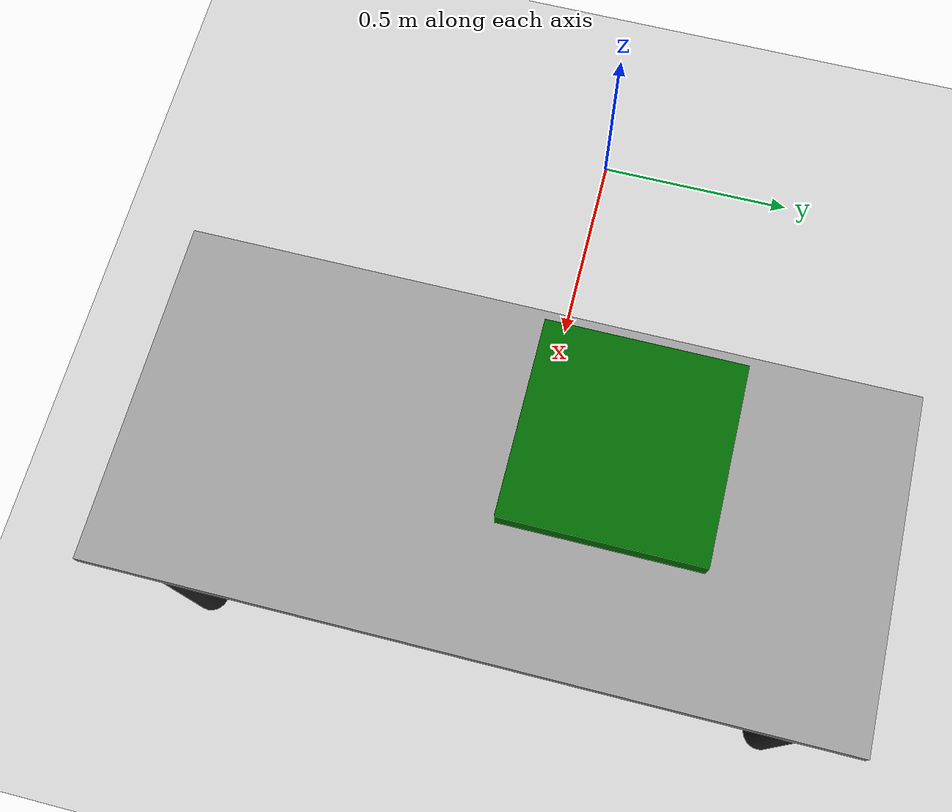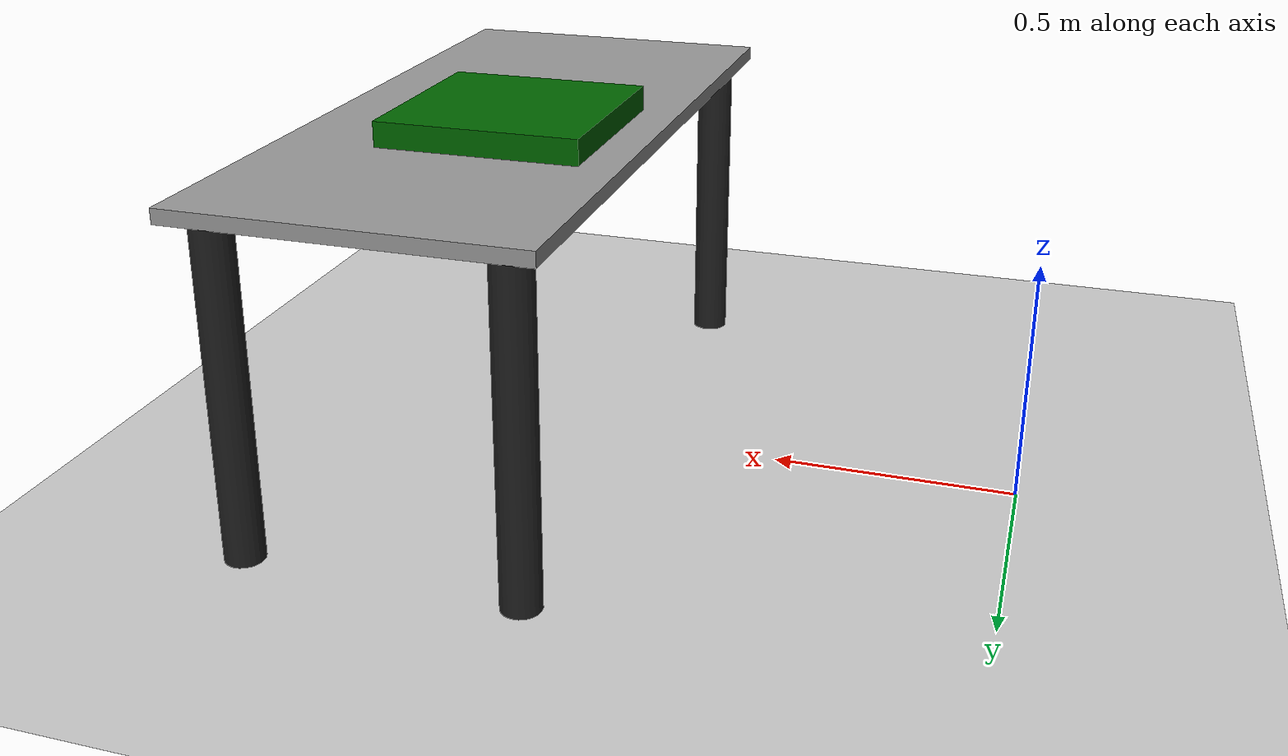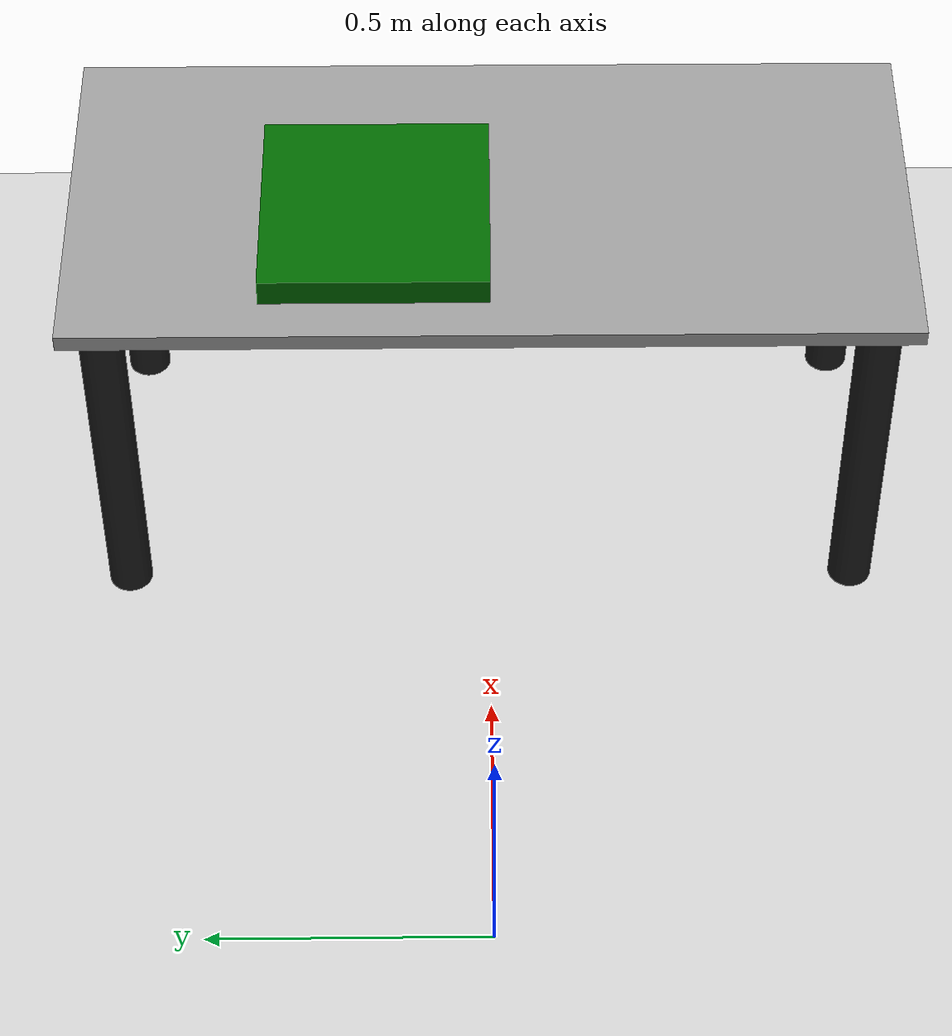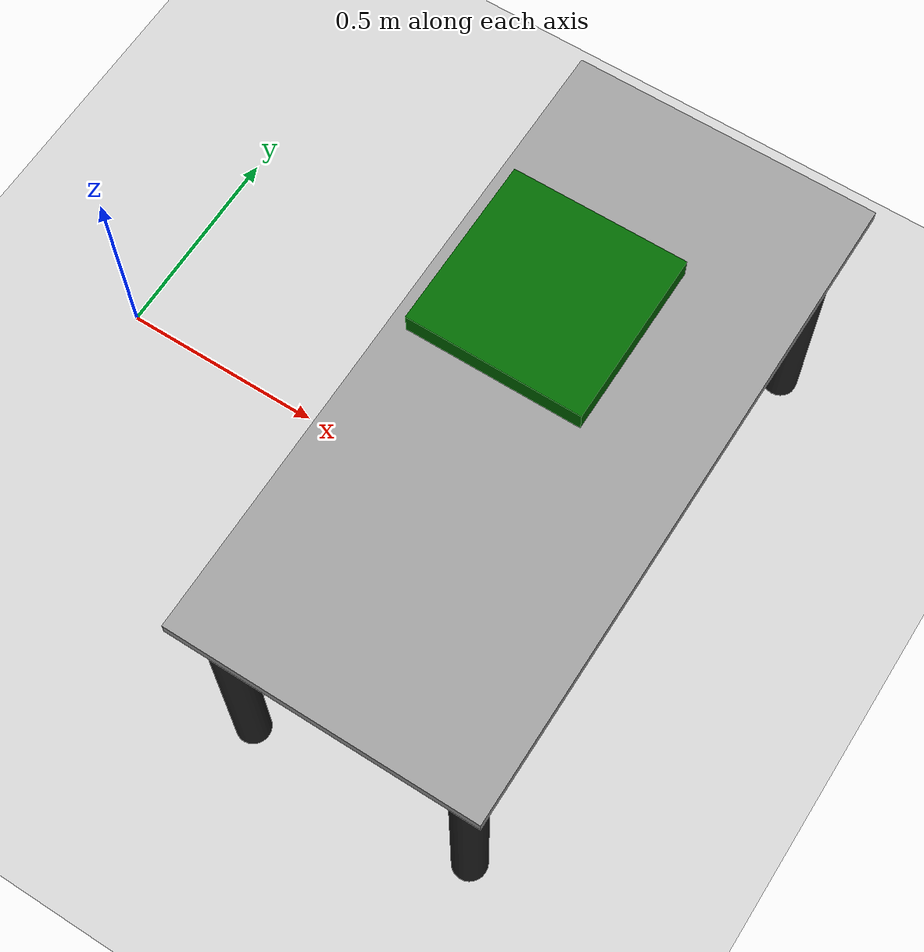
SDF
<sdf version="1.6">
 <world name="default">
  <include><uri>model://sun</uri></include>
  <include><uri>model://ground_plane</uri></include>
  <include>
   <uri>file:///ros2_ws/install/spraying_pathways/share/spraying_pathways/models/black_table</uri>
   <pose>1.1 0 0 0 0 1.5708</pose>
  </include>
  <include>
   <uri>file:///ros2_ws/install/spraying_pathways/share/spraying_pathways/models/box_0_5</uri>
   <pose>1.0 0.2 0.77 0 0 0</pose>
  </include>
 </world>
</sdf>

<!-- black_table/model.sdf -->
<sdf version='1.7'>
  <model name='black_table'>
    <static>1</static>
    <link name='link'>
      <collision name='surface'>
        <pose>0 0 0.7 0 -0 0</pose>
        <geometry>
          <box>
            <size>1.5 0.7 0.03</size>
          </box>
        </geometry>
        <surface>
          <friction>
            <ode>
              <mu>0.6</mu>
              <mu2>0.6</mu2>
            </ode>
          </friction>
        </surface>
      </collision>
      <visual name='visual1'>
        <pose>0 0 0.7 0 -0 0</pose>
        <geometry>
          <box>
            <size>1.5 0.7 0.03</size>
          </box>
        </geometry>
        <material>
          <script>
            <uri>file://media/materials/scripts/gazebo.material</uri>
            <name>Gazebo/Grey</name>
          </script>
        </material>
      </visual>
      <collision name='front_left_leg'>
        <pose>0.68 0.28 0.35 0 -0 0</pose>
        <geometry>
          <cylinder>
            <radius>0.04</radius>
            <length>0.7</length>
          </cylinder>
        </geometry>
      </collision>
      <visual name='front_left_leg'>
        <pose>0.68 0.28 0.35 0 -0 0</pose>
        <geometry>
          <cylinder>
            <radius>0.04</radius>
            <length>0.7</length>
          </cylinder>
        </geometry>
        <material>
          <script>
            <uri>file://media/materials/scripts/gazebo.material</uri>
            <name>Gazebo/Black</name>
          </script>
        </material>
      </visual>
      <collision name='front_right_leg'>
        <pose>0.68 -0.28 0.35 0 -0 0</pose>
        <geometry>
          <cylinder>
            <radius>0.04</radius>
            <length>0.7</length>
          </cylinder>
        </geometry>
      </collision>
      <visual name='front_right_leg'>
        <pose>0.68 -0.28 0.35 0 -0 0</pose>
        <geometry>
          <cylinder>
            <radius>0.04</radius>
            <length>0.7</length>
          </cylinder>
        </geometry>
        <material>
          <script>
            <uri>file://media/materials/scripts/gazebo.material</uri>
            <name>Gazebo/Black</name>
          </script>
        </material>
      </visual>
      <collision name='back_right_leg'>
        <pose>-0.68 -0.28 0.35 0 -0 0</pose>
        <geometry>
          <cylinder>
            <radius>0.04</radius>
            <length>0.7</length>
          </cylinder>
        </geometry>
      </collision>
      <visual name='back_right_leg'>
        <pose>-0.68 -0.28 0.35 0 -0 0</pose>
        <geometry>
          <cylinder>
            <radius>0.04</radius>
            <length>0.7</length>
          </cylinder>
        </geometry>
        <material>
          <script>
            <uri>file://media/materials/scripts/gazebo.material</uri>
            <name>Gazebo/Black</name>
          </script>
        </material>
      </visual>
      <collision name='back_left_leg'>
        <pose>-0.68 0.28 0.35 0 -0 0</pose>
        <geometry>
          <cylinder>
            <radius>0.04</radius>
            <length>0.7</length>
          </cylinder>
        </geometry>
      </collision>
      <visual name='back_left_leg'>
        <pose>-0.68 0.28 0.35 0 -0 0</pose>
        <geometry>
          <cylinder>
            <radius>0.04</radius>
            <length>0.7</length>
          </cylinder>
        </geometry>
        <material>
          <script>
            <uri>file://media/materials/scripts/gazebo.material</uri>
            <name>Gazebo/Black</name>
          </script>
        </material>
      </visual>
    </link>
    <pose>4e-06 -1e-06 -0 0 -0 0</pose>
  </model>
</sdf>

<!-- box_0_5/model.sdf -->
<sdf version='1.7'>
  <model name='box_0_5'>
    <link name='link_0'>
      <inertial>
        <mass>1</mass>
        <inertia>
          <ixx>0.166667</ixx>
          <ixy>0</ixy>
          <ixz>0</ixz>
          <iyy>0.166667</iyy>
          <iyz>0</iyz>
          <izz>0.166667</izz>
        </inertia>
        <pose>0 0 0 0 -0 0</pose>
      </inertial>
      <pose>0 0 0 0 -0 0</pose>
      <gravity>1</gravity>
      <self_collide>0</self_collide>
      <kinematic>0</kinematic>
      <enable_wind>0</enable_wind>
      <visual name='visual'>
        <pose>0 0 0 0 -0 0</pose>
        <geometry>
          <box>
            <size>0.4 0.4 0.05</size>
          </box>
        </geometry>
        <material>
          <lighting>1</lighting>
          <script>
            <uri>file://media/materials/scripts/gazebo.material</uri>
            <name>Gazebo/Grey</name>
          </script>
          <shader type='pixel'>
            <normal_map>__default__</normal_map>
          </shader>
          <ambient>0.0 0.2 0.0 1</ambient>
          <diffuse>0.0 0.4 0.0 1</diffuse>
          <specular>0.05 0.1 0.05 1</specular>
          <emissive>0 0 0 1</emissive>
        </material>
        <transparency>0</transparency>
        <cast_shadows>1</cast_shadows>
      </visual>
      <collision name='collision'>
        <laser_retro>0</laser_retro>
        <max_contacts>10</max_contacts>
        <pose>0 0 0 0 -0 0</pose>
        <geometry>
          <box>
            <size>0.4 0.4 0.05</size>
          </box>
        </geometry>
        <surface>
          <friction>
            <ode>
              <mu>1</mu>
              <mu2>1</mu2>
              <fdir1>0 0 0</fdir1>
              <slip1>0</slip1>
              <slip2>0</slip2>
            </ode>
            <torsional>
              <coefficient>1</coefficient>
              <patch_radius>0</patch_radius>
              <surface_radius>0</surface_radius>
              <use_patch_radius>1</use_patch_radius>
              <ode>
                <slip>0</slip>
              </ode>
            </torsional>
          </friction>
          <bounce>
            <restitution_coefficient>0</restitution_coefficient>
            <threshold>1e+06</threshold>
          </bounce>
          <contact>
            <collide_without_contact>0</collide_without_contact>
            <collide_without_contact_bitmask>1</collide_without_contact_bitmask>
            <collide_bitmask>1</collide_bitmask>
            <ode>
              <soft_cfm>0</soft_cfm>
              <soft_erp>0.2</soft_erp>
              <kp>1e+13</kp>
              <kd>1</kd>
              <max_vel>0.01</max_vel>
              <min_depth>0</min_depth>
            </ode>
            <bullet>
              <split_impulse>1</split_impulse>
              <split_impulse_penetration_threshold>-0.01</split_impulse_penetration_threshold>
              <soft_cfm>0</soft_cfm>
              <soft_erp>0.2</soft_erp>
              <kp>1e+13</kp>
              <kd>1</kd>
            </bullet>
          </contact>
        </surface>
      </collision>
    </link>
    <static>0</static>
    <allow_auto_disable>1</allow_auto_disable>
  </model>
</sdf>
